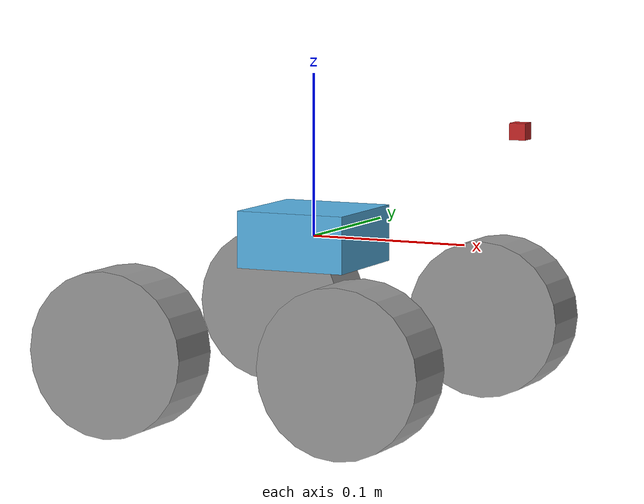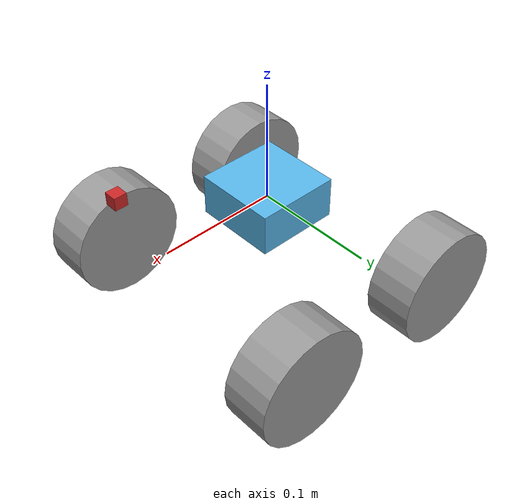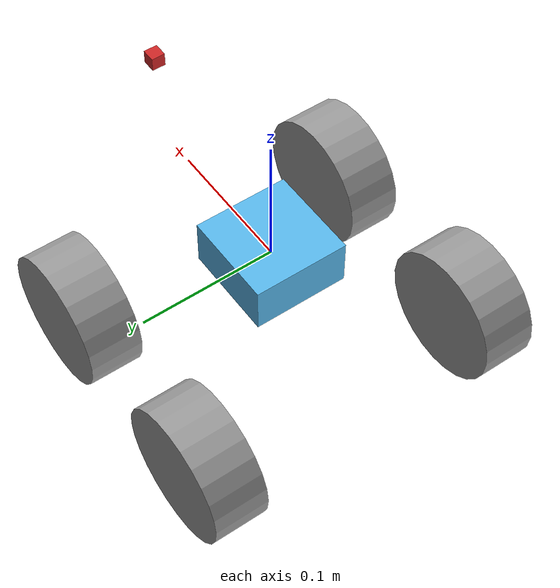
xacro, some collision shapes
<?xml version="1.0"?>
<robot name="roscontrol" xmlns:xacro="http://ros.org/wiki/xacro">

  <xacro:property name="width" value="0.08" />
  <xacro:property name="dis" value="0.2" />
  <xacro:property name="leglen" value="0.6" />
  <xacro:property name="polelen" value="0.2" />
  <xacro:property name="bodylen" value="0.14" />
  <xacro:property name="baselen" value="0.4" />
  <xacro:property name="wheeldiam" value="0.05" />
  <xacro:property name="pi" value="3.1415" />
  <xacro:property name="camera_link" value=".01" />

  <material name="blue">
    <color rgba="0 0 0.8 1"/>
  </material>

  <material name="black">
    <color rgba="0 0 0 1"/>
  </material>

  <material name="white">
    <color rgba="1 1 1 1"/>
  </material>

  <xacro:macro name="default_inertial" params="mass">
    <inertial>
      <mass value="${mass}" />
      <inertia ixx="1.0" ixy="0.0" ixz="0.0" iyy="1.0" iyz="0.0" izz="1.0" />
    </inertial>
  </xacro:macro>

<link name="dummy">
   </link>

  <link name="ddr/base_link">
    <visual>
	<origin rpy="0 0 0" xyz="0 0 -.03"/>
      <geometry>

          <mesh filename="package://ddr/urdf/caja_1.dae"/>

        </geometry>
    </visual>
    <collision>
      <geometry>
         <box size="${bodylen/2} ${bodylen/2} ${bodylen/4}"/>
      </geometry>
    </collision>
    <xacro:default_inertial mass="50"/>
  </link>

<joint name="dummy_joint" type="fixed">
     <parent link="dummy"/>
     <child link="ddr/base_link"/>
   </joint>

  <gazebo reference="ddr/base_link">
    <material>marker2/diffuce</material>
  </gazebo>

  <xacro:macro name="wheel" params="prefix suffix x y">

    <link name="${prefix}_${suffix}_wheel">
      <visual>
        <origin xyz="0 0 0" rpy="${-pi/2} 0 0 " />
        <geometry>
	 <cylinder radius="${wheeldiam}" length="0.04"/>
        </geometry>

      </visual>
      <collision>
        <origin xyz="0 0 0" rpy="${pi/2} 0 0" />
        <geometry>
          <cylinder radius="${wheeldiam}" length="0.04"/>
        </geometry>
      </collision>
      <xacro:default_inertial mass="100"/>
    </link>
    <joint name="${prefix}_${suffix}_wheel_joint" type="continuous">
      <axis xyz="0 1 0" rpy="0 0 0" />
      <parent link="ddr/base_link"/>
      <child link="${prefix}_${suffix}_wheel"/>
      <origin xyz="${x*0.075} ${y*0.11} -${0.06}" rpy="0 0 0"/>
    </joint>

    <!-- This block provides the simulator (Gazebo) with information on a few additional
    physical properties. See http://gazebosim.org/tutorials/?tut=ros_urdf for more-->
    <gazebo reference="${prefix}_${suffix}_wheel">
      <mu1 value="2000.0"/>
      <mu2 value="1000.0"/>
      <kp value="10000000.0" />
      <kd value="1000000000.0" />
      <contact>
          <ode>
            <min_depth>0.5</min_depth>
          </ode>
        </contact>
      <material>Gazebo/Grey</material>
    </gazebo>

    <!-- This block connects the wheel joint to an actuator (motor), which informs both
    simulation and visualization of the robot -->
    <transmission name="${prefix}_${suffix}_wheel_trans">
      <type>transmission_interface/SimpleTransmission</type>
      <actuator name="${prefix}_${suffix}_wheel_motor">
        <mechanicalReduction>1</mechanicalReduction>
      </actuator>
      <joint name="${prefix}_${suffix}_wheel_joint">
        <hardwareInterface>VelocityJointInterface</hardwareInterface>
      </joint>
    </transmission>

  </xacro:macro>

  <xacro:wheel prefix="left" suffix="front" x="1" y="1"/>
  <xacro:wheel prefix="left" suffix="back" x="-1" y="1"/>
  <xacro:wheel prefix="right" suffix="front" x="1" y="-1"/>
  <xacro:wheel prefix="right" suffix="back" x="-1" y="-1"/>

  <joint name="camera_joint" type="continuous">
    <axis xyz="1 0 0" />
    <origin xyz="${camera_link/2 + width+.05} 0 ${bodylen/2}" rpy="0 0 0"/>
    <parent link="ddr/base_link"/>
    <child link="ddr/camera_link"/>
  </joint>

  <!-- Camera -->
  <link name="ddr/camera_link">
    <collision>
      <origin xyz="0 0 0" rpy="0 0 0"/>
      <geometry>
    <box size="${camera_link} ${camera_link} ${camera_link}"/>
      </geometry>
    </collision>

    <visual>
      <origin xyz="0 0 0" rpy="0 0 0"/>
      <geometry>
    <box size="${camera_link} ${camera_link} ${camera_link}"/>
      </geometry>
      <material name="red"/>
    </visual>

    <inertial>
      <mass value="1e-5" />
      <origin xyz="0 0 0" rpy="0 0 0"/>
      <inertia ixx="1e-6" ixy="0" ixz="0" iyy="1e-6" iyz="0" izz="1e-6" />
    </inertial>
  </link>

   <transmission name="camera_trans">
    <type>transmission_interface/SimpleTransmission</type>
    <actuator name="camera_motor">
      <mechanicalReduction>1</mechanicalReduction>
    </actuator>
    <joint name="camera_joint">
      <hardwareInterface>PositionJointInterface</hardwareInterface>
    </joint>
  </transmission>

  <!-- Gazebo plugin for ROS Control -->
  <gazebo>
    <plugin name="gazebo_ros_control" filename="libgazebo_ros_control.so">

    </plugin>
  </gazebo>

      <!--camera -->
    <gazebo reference="ddr/camera_link">
	  <sensor name="camera" type="depth">
	    <update_rate>60</update_rate>
	    <camera>
	      <horizontal_fov>1.047198</horizontal_fov>
	      <image>
		<width>640</width>
		<height>480</height>
		<format>R8G8B8</format>
	      </image>
	      <clip>
		<near>0.1</near>
		<far>6</far>
	      </clip>
	    </camera>

            <plugin name="camera_controller" filename="libgazebo_ros_openni_kinect.so">
              <baseline>0.2</baseline>
              <alwaysOn>true</alwaysOn>

	      <updateRate>0.0</updateRate>
	      <cameraName>rrbot/camera</cameraName>
	      <imageTopicName>/rrbot/camera/color/image_raw</imageTopicName>
	      <cameraInfoTopicName>/rrbot/camera/color/camera_info</cameraInfoTopicName>
              <depthImageTopicName>/rrbot/camera/depth/image_raw</depthImageTopicName>
	      <depthImageCameraInfoTopicName>/rrbot/camera/depth/camera_info</depthImageCameraInfoTopicName>
	      <pointCloudTopicName>/rrbot/camera/depth/points</pointCloudTopicName>
	      <frameName>/ddr/camera_link</frameName>
	      <pointCloudCutoff>0.1</pointCloudCutoff>
	      <pointCloudCutoffMax>4.0</pointCloudCutoffMax>
	      <distortionK1>0</distortionK1>
	      <distortionK2>0</distortionK2>
	      <distortionK3>0</distortionK3>
	      <distortionT1>0</distortionT1>
	      <distortionT2>0</distortionT2>
	      <CxPrime>0</CxPrime>
	      <Cx>0</Cx>
	      <Cy>0</Cy>
	      <focalLength>0</focalLength>
	      <hackBaseline>0</hackBaseline>
            </plugin>
          </sensor>
    </gazebo>
</robot>
